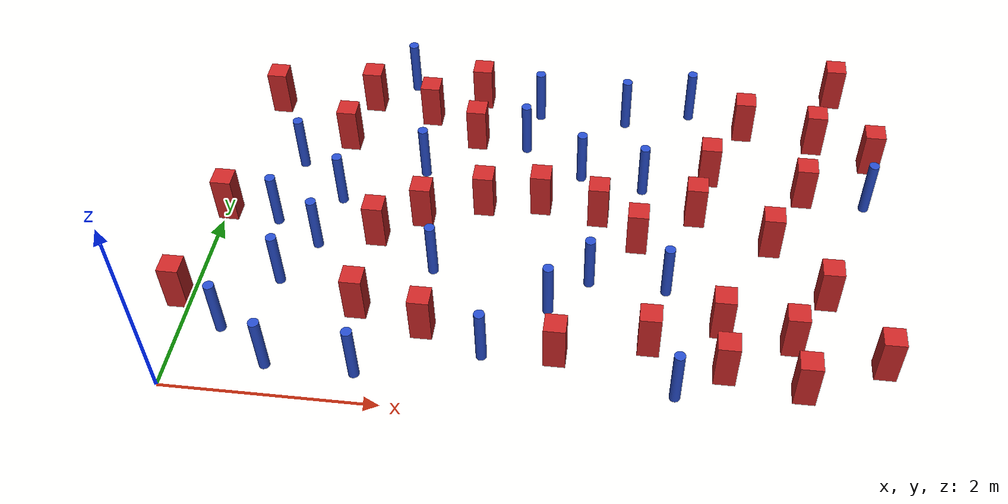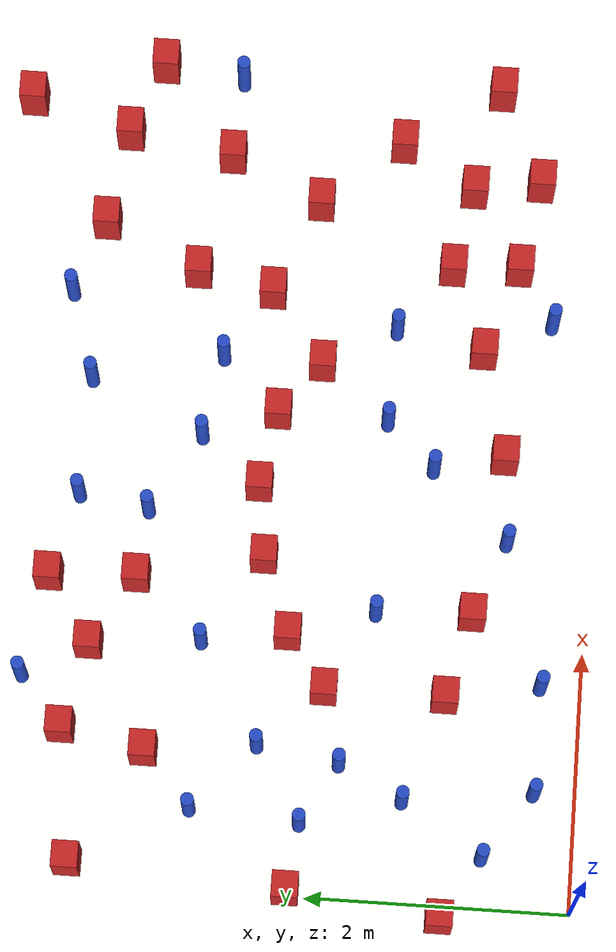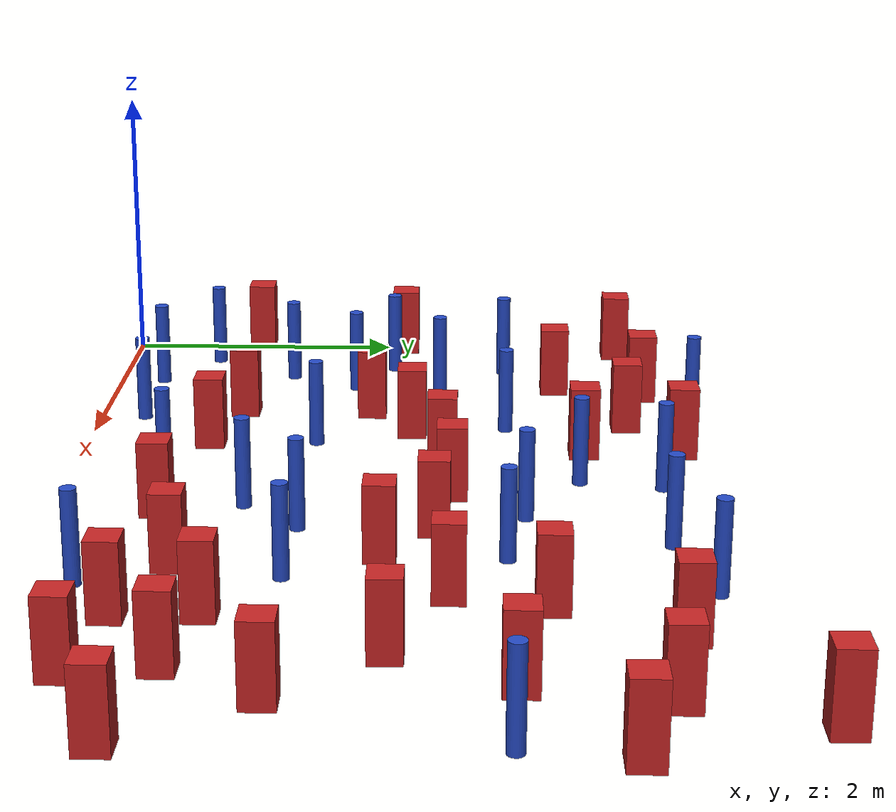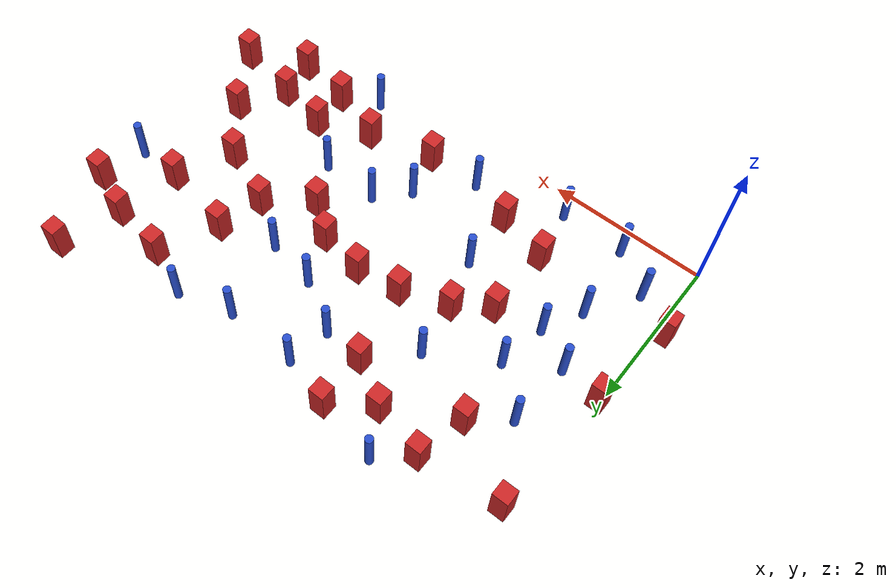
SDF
<sdf version="1.6">
 <model name="dense_20">
  <model name="pole_obstacle3">
   <static>true</static>
   <pose>1.12006407967 2.42599292531 2.88873142074e-08 -9.90536689791e-09 4.6021994899e-07 -1.20965994959e-07</pose>
   <link name="link">
    <pose>0 0 0.3 0 -0 0</pose>
    <inertial>
     <mass>1</mass>
     <inertia><ixx>0.145833</ixx><ixy>0</ixy><ixz>0</ixz><iyy>0.145833</iyy><iyz>0</iyz><izz>0.125</izz></inertia>
    </inertial>
    <collision name="collision">
     <geometry><cylinder><radius>0.05</radius><length>.6</length></cylinder></geometry>
    </collision>
    <visual name="visual">
     <geometry><cylinder><radius>0.05</radius><length>.6</length></cylinder></geometry>
     <material>
      <script><name>Gazebo/Blue</name><uri>file://media/materials/scripts/gazebo.material</uri></script>
     </material>
    </visual>
   </link>
  </model>
  <model name="square_post_obstacle14">
   <static>true</static>
   <pose>5.66487133897 0.518670508902 8.22691968438e-08 7.2212513382e-06 -7.54495500217e-07 2.29674213826e-05</pose>
   <link name="link">
    <pose>0 0 0.25 0 -0 0</pose>
    <inertial>
     <mass>100</mass>
     <inertia>
      <ixx>0.166667</ixx>
      <ixy>0</ixy>
      <ixz>0</ixz>
      <iyy>0.166667</iyy>
      <iyz>0</iyz>
      <izz>0.166667</izz>
     </inertia>
    </inertial>
    <collision name="collision"><geometry><box><size>.2 .2 .5</size></box></geometry></collision>
    <visual name="visual">
     <geometry><box><size>.2 .2 .5</size></box></geometry>
     <material>
      <script><name>Gazebo/Red</name><uri>file://media/materials/scripts/gazebo.material</uri></script>
     </material>
    </visual>
   </link>
  </model>
  <model name="pole_obstacle9">
   <static>true</static>
   <pose>4.54602831759 0.370276990639 2.88873142074e-08 -9.90536689981e-09 4.60219948986e-07 -1.20965994962e-07</pose>
   <link name="link">
    <pose>0 0 0.3 0 -0 0</pose>
    <inertial>
     <mass>1</mass>
     <inertia><ixx>0.145833</ixx><ixy>0</ixy><ixz>0</ixz><iyy>0.145833</iyy><iyz>0</iyz><izz>0.125</izz></inertia>
    </inertial>
    <collision name="collision">
     <geometry><cylinder><radius>0.05</radius><length>.6</length></cylinder></geometry>
    </collision>
    <visual name="visual">
     <geometry><cylinder><radius>0.05</radius><length>.6</length></cylinder></geometry>
     <material>
      <script><name>Gazebo/Blue</name><uri>file://media/materials/scripts/gazebo.material</uri></script>
     </material>
    </visual>
   </link>
  </model>
  <model name="square_post_obstacle31">
   <static>true</static>
   <pose>4.94219889889 1.16377534675 8.22691968438e-08 7.2212513382e-06 -7.54495500217e-07 2.29674213826e-05</pose>
   <link name="link">
    <pose>0 0 0.25 0 -0 0</pose>
    <inertial>
     <mass>100</mass>
     <inertia>
      <ixx>0.166667</ixx>
      <ixy>0</ixy>
      <ixz>0</ixz>
      <iyy>0.166667</iyy>
      <iyz>0</iyz>
      <izz>0.166667</izz>
     </inertia>
    </inertial>
    <collision name="collision"><geometry><box><size>.2 .2 .5</size></box></geometry></collision>
    <visual name="visual">
     <geometry><box><size>.2 .2 .5</size></box></geometry>
     <material>
      <script><name>Gazebo/Red</name><uri>file://media/materials/scripts/gazebo.material</uri></script>
     </material>
    </visual>
   </link>
  </model>
  <model name="pole_obstacle25">
   <static>true</static>
   <pose>4.42375611299 1.56296586128 2.88873142074e-08 -9.90536689445e-09 4.60219948999e-07 -1.20965994956e-07</pose>
   <link name="link">
    <pose>0 0 0.3 0 -0 0</pose>
    <inertial>
     <mass>1</mass>
     <inertia><ixx>0.145833</ixx><ixy>0</ixy><ixz>0</ixz><iyy>0.145833</iyy><iyz>0</iyz><izz>0.125</izz></inertia>
    </inertial>
    <collision name="collision">
     <geometry><cylinder><radius>0.05</radius><length>.6</length></cylinder></geometry>
    </collision>
    <visual name="visual">
     <geometry><cylinder><radius>0.05</radius><length>.6</length></cylinder></geometry>
     <material>
      <script><name>Gazebo/Blue</name><uri>file://media/materials/scripts/gazebo.material</uri></script>
     </material>
    </visual>
   </link>
  </model>
  <model name="square_post_obstacle32">
   <static>true</static>
   <pose>5.1428946223 3.85929947308 8.22691968438e-08 7.2212513382e-06 -7.54495500217e-07 2.29674213826e-05</pose>
   <link name="link">
    <pose>0 0 0.25 0 -0 0</pose>
    <inertial>
     <mass>100</mass>
     <inertia>
      <ixx>0.166667</ixx>
      <ixy>0</ixy>
      <ixz>0</ixz>
      <iyy>0.166667</iyy>
      <iyz>0</iyz>
      <izz>0.166667</izz>
     </inertia>
    </inertial>
    <collision name="collision"><geometry><box><size>.2 .2 .5</size></box></geometry></collision>
    <visual name="visual">
     <geometry><box><size>.2 .2 .5</size></box></geometry>
     <material>
      <script><name>Gazebo/Red</name><uri>file://media/materials/scripts/gazebo.material</uri></script>
     </material>
    </visual>
   </link>
  </model>
  <model name="pole_obstacle30">
   <static>true</static>
   <pose>0.374641003809 0.685154398655 2.88873142074e-08 -9.9053668986e-09 4.60219948989e-07 -1.20965994961e-07</pose>
   <link name="link">
    <pose>0 0 0.3 0 -0 0</pose>
    <inertial>
     <mass>1</mass>
     <inertia><ixx>0.145833</ixx><ixy>0</ixy><ixz>0</ixz><iyy>0.145833</iyy><iyz>0</iyz><izz>0.125</izz></inertia>
    </inertial>
    <collision name="collision">
     <geometry><cylinder><radius>0.05</radius><length>.6</length></cylinder></geometry>
    </collision>
    <visual name="visual">
     <geometry><cylinder><radius>0.05</radius><length>.6</length></cylinder></geometry>
     <material>
      <script><name>Gazebo/Blue</name><uri>file://media/materials/scripts/gazebo.material</uri></script>
     </material>
    </visual>
   </link>
  </model>
  <model name="pole_obstacle32">
   <static>true</static>
   <pose>4.57245997009 4.08333504648 2.88873142074e-08 -9.90536690842e-09 4.60219948965e-07 -1.20965994976e-07</pose>
   <link name="link">
    <pose>0 0 0.3 0 -0 0</pose>
    <inertial>
     <mass>1</mass>
     <inertia><ixx>0.145833</ixx><ixy>0</ixy><ixz>0</ixz><iyy>0.145833</iyy><iyz>0</iyz><izz>0.125</izz></inertia>
    </inertial>
    <collision name="collision">
     <geometry><cylinder><radius>0.05</radius><length>.6</length></cylinder></geometry>
    </collision>
    <visual name="visual">
     <geometry><cylinder><radius>0.05</radius><length>.6</length></cylinder></geometry>
     <material>
      <script><name>Gazebo/Blue</name><uri>file://media/materials/scripts/gazebo.material</uri></script>
     </material>
    </visual>
   </link>
  </model>
  <model name="square_post_obstacle37">
   <static>true</static>
   <pose>5.74137818954 2.92356763334 8.22691968438e-08 7.2212513382e-06 -7.54495500217e-07 2.29674213826e-05</pose>
   <link name="link">
    <pose>0 0 0.25 0 -0 0</pose>
    <inertial>
     <mass>100</mass>
     <inertia>
      <ixx>0.166667</ixx>
      <ixy>0</ixy>
      <ixz>0</ixz>
      <iyy>0.166667</iyy>
      <iyz>0</iyz>
      <izz>0.166667</izz>
     </inertia>
    </inertial>
    <collision name="collision"><geometry><box><size>.2 .2 .5</size></box></geometry></collision>
    <visual name="visual">
     <geometry><box><size>.2 .2 .5</size></box></geometry>
     <material>
      <script><name>Gazebo/Red</name><uri>file://media/materials/scripts/gazebo.material</uri></script>
     </material>
    </visual>
   </link>
  </model>
  <model name="square_post_obstacle51">
   <static>true</static>
   <pose>3.71321894691 2.43603956643 8.22691968438e-08 7.2212513382e-06 -7.54495500217e-07 2.29674213826e-05</pose>
   <link name="link">
    <pose>0 0 0.25 0 -0 0</pose>
    <inertial>
     <mass>100</mass>
     <inertia>
      <ixx>0.166667</ixx>
      <ixy>0</ixy>
      <ixz>0</ixz>
      <iyy>0.166667</iyy>
      <iyz>0</iyz>
      <izz>0.166667</izz>
     </inertia>
    </inertial>
    <collision name="collision"><geometry><box><size>.2 .2 .5</size></box></geometry></collision>
    <visual name="visual">
     <geometry><box><size>.2 .2 .5</size></box></geometry>
     <material>
      <script><name>Gazebo/Red</name><uri>file://media/materials/scripts/gazebo.material</uri></script>
     </material>
    </visual>
   </link>
  </model>
  <model name="square_post_obstacle52">
   <static>true</static>
   <pose>3.4635204265 0.680936921465 8.22691968438e-08 7.2212513382e-06 -7.54495500217e-07 2.29674213826e-05</pose>
   <link name="link">
    <pose>0 0 0.25 0 -0 0</pose>
    <inertial>
     <mass>100</mass>
     <inertia>
      <ixx>0.166667</ixx>
      <ixy>0</ixy>
      <ixz>0</ixz>
      <iyy>0.166667</iyy>
      <iyz>0</iyz>
      <izz>0.166667</izz>
     </inertia>
    </inertial>
    <collision name="collision"><geometry><box><size>.2 .2 .5</size></box></geometry></collision>
    <visual name="visual">
     <geometry><box><size>.2 .2 .5</size></box></geometry>
     <material>
      <script><name>Gazebo/Red</name><uri>file://media/materials/scripts/gazebo.material</uri></script>
     </material>
    </visual>
   </link>
  </model>
  <model name="square_post_obstacle54">
   <static>true</static>
   <pose>3.13257688299 2.54080047916 8.22691968438e-08 7.2212513382e-06 -7.54495500217e-07 2.29674213826e-05</pose>
   <link name="link">
    <pose>0 0 0.25 0 -0 0</pose>
    <inertial>
     <mass>100</mass>
     <inertia>
      <ixx>0.166667</ixx>
      <ixy>0</ixy>
      <ixz>0</ixz>
      <iyy>0.166667</iyy>
      <iyz>0</iyz>
      <izz>0.166667</izz>
     </inertia>
    </inertial>
    <collision name="collision"><geometry><box><size>.2 .2 .5</size></box></geometry></collision>
    <visual name="visual">
     <geometry><box><size>.2 .2 .5</size></box></geometry>
     <material>
      <script><name>Gazebo/Red</name><uri>file://media/materials/scripts/gazebo.material</uri></script>
     </material>
    </visual>
   </link>
  </model>
  <model name="square_post_obstacle60">
   <static>true</static>
   <pose>1.82237085994 3.7509318334 8.22691968438e-08 7.2212513382e-06 -7.54495500217e-07 2.29674213826e-05</pose>
   <link name="link">
    <pose>0 0 0.25 0 -0 0</pose>
    <inertial>
     <mass>100</mass>
     <inertia>
      <ixx>0.166667</ixx>
      <ixy>0</ixy>
      <ixz>0</ixz>
      <iyy>0.166667</iyy>
      <iyz>0</iyz>
      <izz>0.166667</izz>
     </inertia>
    </inertial>
    <collision name="collision"><geometry><box><size>.2 .2 .5</size></box></geometry></collision>
    <visual name="visual">
     <geometry><box><size>.2 .2 .5</size></box></geometry>
     <material>
      <script><name>Gazebo/Red</name><uri>file://media/materials/scripts/gazebo.material</uri></script>
     </material>
    </visual>
   </link>
  </model>
  <model name="pole_obstacle60">
   <static>true</static>
   <pose>1.70444172719 0.311133510818 2.88873142074e-08 -9.90536689733e-09 4.60219948992e-07 -1.20965994959e-07</pose>
   <link name="link">
    <pose>0 0 0.3 0 -0 0</pose>
    <inertial>
     <mass>1</mass>
     <inertia><ixx>0.145833</ixx><ixy>0</ixy><ixz>0</ixz><iyy>0.145833</iyy><iyz>0</iyz><izz>0.125</izz></inertia>
    </inertial>
    <collision name="collision">
     <geometry><cylinder><radius>0.05</radius><length>.6</length></cylinder></geometry>
    </collision>
    <visual name="visual">
     <geometry><cylinder><radius>0.05</radius><length>.6</length></cylinder></geometry>
     <material>
      <script><name>Gazebo/Blue</name><uri>file://media/materials/scripts/gazebo.material</uri></script>
     </material>
    </visual>
   </link>
  </model>
  <model name="pole_obstacle63">
   <static>true</static>
   <pose>1.89204631772 2.90207354669 2.88873142074e-08 -9.90536689791e-09 4.6021994899e-07 -1.20965994959e-07</pose>
   <link name="link">
    <pose>0 0 0.3 0 -0 0</pose>
    <inertial>
     <mass>1</mass>
     <inertia><ixx>0.145833</ixx><ixy>0</ixy><ixz>0</ixz><iyy>0.145833</iyy><iyz>0</iyz><izz>0.125</izz></inertia>
    </inertial>
    <collision name="collision">
     <geometry><cylinder><radius>0.05</radius><length>.6</length></cylinder></geometry>
    </collision>
    <visual name="visual">
     <geometry><cylinder><radius>0.05</radius><length>.6</length></cylinder></geometry>
     <material>
      <script><name>Gazebo/Blue</name><uri>file://media/materials/scripts/gazebo.material</uri></script>
     </material>
    </visual>
   </link>
  </model>
  <model name="square_post_obstacle66">
   <static>true</static>
   <pose>1.16284551338 3.91418669821 8.22691968438e-08 7.2212513382e-06 -7.54495500217e-07 2.29674213826e-05</pose>
   <link name="link">
    <pose>0 0 0.25 0 -0 0</pose>
    <inertial>
     <mass>100</mass>
     <inertia>
      <ixx>0.166667</ixx>
      <ixy>0</ixy>
      <ixz>0</ixz>
      <iyy>0.166667</iyy>
      <iyz>0</iyz>
      <izz>0.166667</izz>
     </inertia>
    </inertial>
    <collision name="collision"><geometry><box><size>.2 .2 .5</size></box></geometry></collision>
    <visual name="visual">
     <geometry><box><size>.2 .2 .5</size></box></geometry>
     <material>
      <script><name>Gazebo/Red</name><uri>file://media/materials/scripts/gazebo.material</uri></script>
     </material>
    </visual>
   </link>
  </model>
  <model name="square_post_obstacle74">
   <static>true</static>
   <pose>2.57115059037 2.46789326973 8.22691968438e-08 7.2212513382e-06 -7.54495500217e-07 2.29674213826e-05</pose>
   <link name="link">
    <pose>0 0 0.25 0 -0 0</pose>
    <inertial>
     <mass>100</mass>
     <inertia>
      <ixx>0.166667</ixx>
      <ixy>0</ixy>
      <ixz>0</ixz>
      <iyy>0.166667</iyy>
      <iyz>0</iyz>
      <izz>0.166667</izz>
     </inertia>
    </inertial>
    <collision name="collision"><geometry><box><size>.2 .2 .5</size></box></geometry></collision>
    <visual name="visual">
     <geometry><box><size>.2 .2 .5</size></box></geometry>
     <material>
      <script><name>Gazebo/Red</name><uri>file://media/materials/scripts/gazebo.material</uri></script>
     </material>
    </visual>
   </link>
  </model>
  <model name="pole_obstacle72">
   <static>true</static>
   <pose>2.80286792616 0.626630785535 2.88873142074e-08 -9.90536689285e-09 4.60219949002e-07 -1.20965994953e-07</pose>
   <link name="link">
    <pose>0 0 0.3 0 -0 0</pose>
    <inertial>
     <mass>1</mass>
     <inertia><ixx>0.145833</ixx><ixy>0</ixy><ixz>0</ixz><iyy>0.145833</iyy><iyz>0</iyz><izz>0.125</izz></inertia>
    </inertial>
    <collision name="collision">
     <geometry><cylinder><radius>0.05</radius><length>.6</length></cylinder></geometry>
    </collision>
    <visual name="visual">
     <geometry><cylinder><radius>0.05</radius><length>.6</length></cylinder></geometry>
     <material>
      <script><name>Gazebo/Blue</name><uri>file://media/materials/scripts/gazebo.material</uri></script>
     </material>
    </visual>
   </link>
  </model>
  <model name="pole_obstacle73">
   <static>true</static>
   <pose>3.34233274552 1.21751272224 2.88873142074e-08 -9.90536689395e-09 4.60219949e-07 -1.20965994953e-07</pose>
   <link name="link">
    <pose>0 0 0.3 0 -0 0</pose>
    <inertial>
     <mass>1</mass>
     <inertia><ixx>0.145833</ixx><ixy>0</ixy><ixz>0</ixz><iyy>0.145833</iyy><iyz>0</iyz><izz>0.125</izz></inertia>
    </inertial>
    <collision name="collision">
     <geometry><cylinder><radius>0.05</radius><length>.6</length></cylinder></geometry>
    </collision>
    <visual name="visual">
     <geometry><cylinder><radius>0.05</radius><length>.6</length></cylinder></geometry>
     <material>
      <script><name>Gazebo/Blue</name><uri>file://media/materials/scripts/gazebo.material</uri></script>
     </material>
    </visual>
   </link>
  </model>
  <model name="pole_obstacle86">
   <static>true</static>
   <pose>3.69305729281 1.59004671607 2.88873142074e-08 -9.90536689395e-09 4.60219949e-07 -1.20965994953e-07</pose>
   <link name="link">
    <pose>0 0 0.3 0 -0 0</pose>
    <inertial>
     <mass>1</mass>
     <inertia><ixx>0.145833</ixx><ixy>0</ixy><ixz>0</ixz><iyy>0.145833</iyy><iyz>0</iyz><izz>0.125</izz></inertia>
    </inertial>
    <collision name="collision">
     <geometry><cylinder><radius>0.05</radius><length>.6</length></cylinder></geometry>
    </collision>
    <visual name="visual">
     <geometry><cylinder><radius>0.05</radius><length>.6</length></cylinder></geometry>
     <material>
      <script><name>Gazebo/Blue</name><uri>file://media/materials/scripts/gazebo.material</uri></script>
     </material>
    </visual>
   </link>
  </model>
  <model name="pole_obstacle88">
   <static>true</static>
   <pose>2.19487959087 1.59058358991 2.88873142074e-08 -9.90536689395e-09 4.60219949e-07 -1.20965994953e-07</pose>
   <link name="link">
    <pose>0 0 0.3 0 -0 0</pose>
    <inertial>
     <mass>1</mass>
     <inertia><ixx>0.145833</ixx><ixy>0</ixy><ixz>0</ixz><iyy>0.145833</iyy><iyz>0</iyz><izz>0.125</izz></inertia>
    </inertial>
    <collision name="collision">
     <geometry><cylinder><radius>0.05</radius><length>.6</length></cylinder></geometry>
    </collision>
    <visual name="visual">
     <geometry><cylinder><radius>0.05</radius><length>.6</length></cylinder></geometry>
     <material>
      <script><name>Gazebo/Blue</name><uri>file://media/materials/scripts/gazebo.material</uri></script>
     </material>
    </visual>
   </link>
  </model>
  <model name="square_post_obstacle82">
   <static>true</static>
   <pose>5.4012256387 2.21309586892 8.22691968438e-08 7.2212513382e-06 -7.54495500217e-07 2.29674213826e-05</pose>
   <link name="link">
    <pose>0 0 0.25 0 -0 0</pose>
    <inertial>
     <mass>100</mass>
     <inertia>
      <ixx>0.166667</ixx>
      <ixy>0</ixy>
      <ixz>0</ixz>
      <iyy>0.166667</iyy>
      <iyz>0</iyz>
      <izz>0.166667</izz>
     </inertia>
    </inertial>
    <collision name="collision"><geometry><box><size>.2 .2 .5</size></box></geometry></collision>
    <visual name="visual">
     <geometry><box><size>.2 .2 .5</size></box></geometry>
     <material>
      <script><name>Gazebo/Red</name><uri>file://media/materials/scripts/gazebo.material</uri></script>
     </material>
    </visual>
   </link>
  </model>
  <model name="square_post_obstacle87">
   <static>true</static>
   <pose>6.11257025935 4.50438272773 8.22691968438e-08 7.2212513382e-06 -7.54495500217e-07 2.29674213826e-05</pose>
   <link name="link">
    <pose>0 0 0.25 0 -0 0</pose>
    <inertial>
     <mass>100</mass>
     <inertia>
      <ixx>0.166667</ixx>
      <ixy>0</ixy>
      <ixz>0</ixz>
      <iyy>0.166667</iyy>
      <iyz>0</iyz>
      <izz>0.166667</izz>
     </inertia>
    </inertial>
    <collision name="collision"><geometry><box><size>.2 .2 .5</size></box></geometry></collision>
    <visual name="visual">
     <geometry><box><size>.2 .2 .5</size></box></geometry>
     <material>
      <script><name>Gazebo/Red</name><uri>file://media/materials/scripts/gazebo.material</uri></script>
     </material>
    </visual>
   </link>
  </model>
  <model name="pole_obstacle106">
   <static>true</static>
   <pose>2.97546142834 3.91210693573 2.88873142074e-08 -9.90536690232e-09 4.6021994898e-07 -1.20965994968e-07</pose>
   <link name="link">
    <pose>0 0 0.3 0 -0 0</pose>
    <inertial>
     <mass>1</mass>
     <inertia><ixx>0.145833</ixx><ixy>0</ixy><ixz>0</ixz><iyy>0.145833</iyy><iyz>0</iyz><izz>0.125</izz></inertia>
    </inertial>
    <collision name="collision">
     <geometry><cylinder><radius>0.05</radius><length>.6</length></cylinder></geometry>
    </collision>
    <visual name="visual">
     <geometry><cylinder><radius>0.05</radius><length>.6</length></cylinder></geometry>
     <material>
      <script><name>Gazebo/Blue</name><uri>file://media/materials/scripts/gazebo.material</uri></script>
     </material>
    </visual>
   </link>
  </model>
  <model name="square_post_obstacle97">
   <static>true</static>
   <pose>4.6678711514 2.53903928232 8.22691968438e-08 7.2212513382e-06 -7.54495500217e-07 2.29674213826e-05</pose>
   <link name="link">
    <pose>0 0 0.25 0 -0 0</pose>
    <inertial>
     <mass>100</mass>
     <inertia>
      <ixx>0.166667</ixx>
      <ixy>0</ixy>
      <ixz>0</ixz>
      <iyy>0.166667</iyy>
      <iyz>0</iyz>
      <izz>0.166667</izz>
     </inertia>
    </inertial>
    <collision name="collision"><geometry><box><size>.2 .2 .5</size></box></geometry></collision>
    <visual name="visual">
     <geometry><box><size>.2 .2 .5</size></box></geometry>
     <material>
      <script><name>Gazebo/Red</name><uri>file://media/materials/scripts/gazebo.material</uri></script>
     </material>
    </visual>
   </link>
  </model>
  <model name="pole_obstacle110">
   <static>true</static>
   <pose>2.88596875471 3.37521365826 2.88873142074e-08 -9.90536690232e-09 4.6021994898e-07 -1.20965994968e-07</pose>
   <link name="link">
    <pose>0 0 0.3 0 -0 0</pose>
    <inertial>
     <mass>1</mass>
     <inertia><ixx>0.145833</ixx><ixy>0</ixy><ixz>0</ixz><iyy>0.145833</iyy><iyz>0</iyz><izz>0.125</izz></inertia>
    </inertial>
    <collision name="collision">
     <geometry><cylinder><radius>0.05</radius><length>.6</length></cylinder></geometry>
    </collision>
    <visual name="visual">
     <geometry><cylinder><radius>0.05</radius><length>.6</length></cylinder></geometry>
     <material>
      <script><name>Gazebo/Blue</name><uri>file://media/materials/scripts/gazebo.material</uri></script>
     </material>
    </visual>
   </link>
  </model>
  <model name="square_post_obstacle108">
   <static>true</static>
   <pose>6.44473476472 3.494466569 8.22691968438e-08 7.2212513382e-06 -7.54495500217e-07 2.29674213826e-05</pose>
   <link name="link">
    <pose>0 0 0.25 0 -0 0</pose>
    <inertial>
     <mass>100</mass>
     <inertia>
      <ixx>0.166667</ixx>
      <ixy>0</ixy>
      <ixz>0</ixz>
      <iyy>0.166667</iyy>
      <iyz>0</iyz>
      <izz>0.166667</izz>
     </inertia>
    </inertial>
    <collision name="collision"><geometry><box><size>.2 .2 .5</size></box></geometry></collision>
    <visual name="visual">
     <geometry><box><size>.2 .2 .5</size></box></geometry>
     <material>
      <script><name>Gazebo/Red</name><uri>file://media/materials/scripts/gazebo.material</uri></script>
     </material>
    </visual>
   </link>
  </model>
  <model name="pole_obstacle120">
   <static>true</static>
   <pose>3.89422844097 3.88358116214 2.88873142074e-08 -9.90536690232e-09 4.6021994898e-07 -1.20965994968e-07</pose>
   <link name="link">
    <pose>0 0 0.3 0 -0 0</pose>
    <inertial>
     <mass>1</mass>
     <inertia><ixx>0.145833</ixx><ixy>0</ixy><ixz>0</ixz><iyy>0.145833</iyy><iyz>0</iyz><izz>0.125</izz></inertia>
    </inertial>
    <collision name="collision">
     <geometry><cylinder><radius>0.05</radius><length>.6</length></cylinder></geometry>
    </collision>
    <visual name="visual">
     <geometry><cylinder><radius>0.05</radius><length>.6</length></cylinder></geometry>
     <material>
      <script><name>Gazebo/Blue</name><uri>file://media/materials/scripts/gazebo.material</uri></script>
     </material>
    </visual>
   </link>
  </model>
  <model name="pole_obstacle128">
   <static>true</static>
   <pose>0.546458283947 2.06798419328 2.88873142074e-08 -9.90536689505e-09 4.60219948997e-07 -1.20965994956e-07</pose>
   <link name="link">
    <pose>0 0 0.3 0 -0 0</pose>
    <inertial>
     <mass>1</mass>
     <inertia><ixx>0.145833</ixx><ixy>0</ixy><ixz>0</ixz><iyy>0.145833</iyy><iyz>0</iyz><izz>0.125</izz></inertia>
    </inertial>
    <collision name="collision">
     <geometry><cylinder><radius>0.05</radius><length>.6</length></cylinder></geometry>
    </collision>
    <visual name="visual">
     <geometry><cylinder><radius>0.05</radius><length>.6</length></cylinder></geometry>
     <material>
      <script><name>Gazebo/Blue</name><uri>file://media/materials/scripts/gazebo.material</uri></script>
     </material>
    </visual>
   </link>
  </model>
  <model name="square_post_obstacle115">
   <static>true</static>
   <pose>5.58071994504 1.03320469162 8.22691968438e-08 7.2212513382e-06 -7.54495500217e-07 2.29674213826e-05</pose>
   <link name="link">
    <pose>0 0 0.25 0 -0 0</pose>
    <inertial>
     <mass>100</mass>
     <inertia>
      <ixx>0.166667</ixx>
      <ixy>0</ixy>
      <ixz>0</ixz>
      <iyy>0.166667</iyy>
      <iyz>0</iyz>
      <izz>0.166667</izz>
     </inertia>
    </inertial>
    <collision name="collision"><geometry><box><size>.2 .2 .5</size></box></geometry></collision>
    <visual name="visual">
     <geometry><box><size>.2 .2 .5</size></box></geometry>
     <material>
      <script><name>Gazebo/Red</name><uri>file://media/materials/scripts/gazebo.material</uri></script>
     </material>
    </visual>
   </link>
  </model>
  <model name="square_post_obstacle116">
   <static>true</static>
   <pose>1.02640708633 3.27632808334 8.22691968438e-08 7.2212513382e-06 -7.54495500217e-07 2.29674213826e-05</pose>
   <link name="link">
    <pose>0 0 0.25 0 -0 0</pose>
    <inertial>
     <mass>100</mass>
     <inertia>
      <ixx>0.166667</ixx>
      <ixy>0</ixy>
      <ixz>0</ixz>
      <iyy>0.166667</iyy>
      <iyz>0</iyz>
      <izz>0.166667</izz>
     </inertia>
    </inertial>
    <collision name="collision"><geometry><box><size>.2 .2 .5</size></box></geometry></collision>
    <visual name="visual">
     <geometry><box><size>.2 .2 .5</size></box></geometry>
     <material>
      <script><name>Gazebo/Red</name><uri>file://media/materials/scripts/gazebo.material</uri></script>
     </material>
    </visual>
   </link>
  </model>
  <model name="pole_obstacle141">
   <static>true</static>
   <pose>4.13117142508 2.88281039151 2.88873142074e-08 -9.90536690245e-09 4.6021994898e-07 -1.20965994966e-07</pose>
   <link name="link">
    <pose>0 0 0.3 0 -0 0</pose>
    <inertial>
     <mass>1</mass>
     <inertia><ixx>0.145833</ixx><ixy>0</ixy><ixz>0</ixz><iyy>0.145833</iyy><iyz>0</iyz><izz>0.125</izz></inertia>
    </inertial>
    <collision name="collision">
     <geometry><cylinder><radius>0.05</radius><length>.6</length></cylinder></geometry>
    </collision>
    <visual name="visual">
     <geometry><cylinder><radius>0.05</radius><length>.6</length></cylinder></geometry>
     <material>
      <script><name>Gazebo/Blue</name><uri>file://media/materials/scripts/gazebo.material</uri></script>
     </material>
    </visual>
   </link>
  </model>
  <model name="square_post_obstacle131">
   <static>true</static>
   <pose>1.9884855205 2.24777952639 8.22691968438e-08 7.2212513382e-06 -7.54495500217e-07 2.29674213826e-05</pose>
   <link name="link">
    <pose>0 0 0.25 0 -0 0</pose>
    <inertial>
     <mass>100</mass>
     <inertia>
      <ixx>0.166667</ixx>
      <ixy>0</ixy>
      <ixz>0</ixz>
      <iyy>0.166667</iyy>
      <iyz>0</iyz>
      <izz>0.166667</izz>
     </inertia>
    </inertial>
    <collision name="collision"><geometry><box><size>.2 .2 .5</size></box></geometry></collision>
    <visual name="visual">
     <geometry><box><size>.2 .2 .5</size></box></geometry>
     <material>
      <script><name>Gazebo/Red</name><uri>file://media/materials/scripts/gazebo.material</uri></script>
     </material>
    </visual>
   </link>
  </model>
  <model name="pole_obstacle149">
   <static>true</static>
   <pose>6.36225177841 2.88321310868 2.88873142074e-08 -9.90536690245e-09 4.6021994898e-07 -1.20965994966e-07</pose>
   <link name="link">
    <pose>0 0 0.3 0 -0 0</pose>
    <inertial>
     <mass>1</mass>
     <inertia><ixx>0.145833</ixx><ixy>0</ixy><ixz>0</ixz><iyy>0.145833</iyy><iyz>0</iyz><izz>0.125</izz></inertia>
    </inertial>
    <collision name="collision">
     <geometry><cylinder><radius>0.05</radius><length>.6</length></cylinder></geometry>
    </collision>
    <visual name="visual">
     <geometry><cylinder><radius>0.05</radius><length>.6</length></cylinder></geometry>
     <material>
      <script><name>Gazebo/Blue</name><uri>file://media/materials/scripts/gazebo.material</uri></script>
     </material>
    </visual>
   </link>
  </model>
  <model name="square_post_obstacle155">
   <static>true</static>
   <pose>2.33254482875 4.09415571903 8.22691968438e-08 7.22125133819e-06 -7.54495500217e-07 2.29674213826e-05</pose>
   <link name="link">
    <pose>0 0 0.25 0 -0 0</pose>
    <inertial>
     <mass>100</mass>
     <inertia>
      <ixx>0.166667</ixx>
      <ixy>0</ixy>
      <ixz>0</ixz>
      <iyy>0.166667</iyy>
      <iyz>0</iyz>
      <izz>0.166667</izz>
     </inertia>
    </inertial>
    <collision name="collision"><geometry><box><size>.2 .2 .5</size></box></geometry></collision>
    <visual name="visual">
     <geometry><box><size>.2 .2 .5</size></box></geometry>
     <material>
      <script><name>Gazebo/Red</name><uri>file://media/materials/scripts/gazebo.material</uri></script>
     </material>
    </visual>
   </link>
  </model>
  <model name="pole_obstacle170">
   <static>true</static>
   <pose>0.766422172282 1.30743694981 2.88873142074e-08 -9.90536689855e-09 4.60219948989e-07 -1.20965994962e-07</pose>
   <link name="link">
    <pose>0 0 0.3 0 -0 0</pose>
    <inertial>
     <mass>1</mass>
     <inertia><ixx>0.145833</ixx><ixy>0</ixy><ixz>0</ixz><iyy>0.145833</iyy><iyz>0</iyz><izz>0.125</izz></inertia>
    </inertial>
    <collision name="collision">
     <geometry><cylinder><radius>0.05</radius><length>.6</length></cylinder></geometry>
    </collision>
    <visual name="visual">
     <geometry><cylinder><radius>0.05</radius><length>.6</length></cylinder></geometry>
     <material>
      <script><name>Gazebo/Blue</name><uri>file://media/materials/scripts/gazebo.material</uri></script>
     </material>
    </visual>
   </link>
  </model>
  <model name="square_post_obstacle161">
   <static>true</static>
   <pose>0.0383099126469 2.1383156638 8.22691968438e-08 7.2212513382e-06 -7.54495500217e-07 2.29674213826e-05</pose>
   <link name="link">
    <pose>0 0 0.25 0 -0 0</pose>
    <inertial>
     <mass>100</mass>
     <inertia>
      <ixx>0.166667</ixx>
      <ixy>0</ixy>
      <ixz>0</ixz>
      <iyy>0.166667</iyy>
      <iyz>0</iyz>
      <izz>0.166667</izz>
     </inertia>
    </inertial>
    <collision name="collision"><geometry><box><size>.2 .2 .5</size></box></geometry></collision>
    <visual name="visual">
     <geometry><box><size>.2 .2 .5</size></box></geometry>
     <material>
      <script><name>Gazebo/Red</name><uri>file://media/materials/scripts/gazebo.material</uri></script>
     </material>
    </visual>
   </link>
  </model>
  <model name="pole_obstacle175">
   <static>true</static>
   <pose>3.49614564618 3.00527513936 2.88873142074e-08 -9.90536690232e-09 4.6021994898e-07 -1.20965994968e-07</pose>
   <link name="link">
    <pose>0 0 0.3 0 -0 0</pose>
    <inertial>
     <mass>1</mass>
     <inertia><ixx>0.145833</ixx><ixy>0</ixy><ixz>0</ixz><iyy>0.145833</iyy><iyz>0</iyz><izz>0.125</izz></inertia>
    </inertial>
    <collision name="collision">
     <geometry><cylinder><radius>0.05</radius><length>.6</length></cylinder></geometry>
    </collision>
    <visual name="visual">
     <geometry><cylinder><radius>0.05</radius><length>.6</length></cylinder></geometry>
     <material>
      <script><name>Gazebo/Blue</name><uri>file://media/materials/scripts/gazebo.material</uri></script>
     </material>
    </visual>
   </link>
  </model>
  <model name="square_post_obstacle169">
   <static>true</static>
   <pose>5.91389027983 1.5980434141 8.22691968438e-08 7.2212513382e-06 -7.54495500217e-07 2.29674213826e-05</pose>
   <link name="link">
    <pose>0 0 0.25 0 -0 0</pose>
    <inertial>
     <mass>100</mass>
     <inertia>
      <ixx>0.166667</ixx>
      <ixy>0</ixy>
      <ixz>0</ixz>
      <iyy>0.166667</iyy>
      <iyz>0</iyz>
      <izz>0.166667</izz>
     </inertia>
    </inertial>
    <collision name="collision"><geometry><box><size>.2 .2 .5</size></box></geometry></collision>
    <visual name="visual">
     <geometry><box><size>.2 .2 .5</size></box></geometry>
     <material>
      <script><name>Gazebo/Red</name><uri>file://media/materials/scripts/gazebo.material</uri></script>
     </material>
    </visual>
   </link>
  </model>
  <model name="pole_obstacle185">
   <static>true</static>
   <pose>0.6059174356 2.90358751027 2.88873142074e-08 -9.90536689636e-09 4.60219948994e-07 -1.20965994958e-07</pose>
   <link name="link">
    <pose>0 0 0.3 0 -0 0</pose>
    <inertial>
     <mass>1</mass>
     <inertia><ixx>0.145833</ixx><ixy>0</ixy><ixz>0</ixz><iyy>0.145833</iyy><iyz>0</iyz><izz>0.125</izz></inertia>
    </inertial>
    <collision name="collision">
     <geometry><cylinder><radius>0.05</radius><length>.6</length></cylinder></geometry>
    </collision>
    <visual name="visual">
     <geometry><cylinder><radius>0.05</radius><length>.6</length></cylinder></geometry>
     <material>
      <script><name>Gazebo/Blue</name><uri>file://media/materials/scripts/gazebo.material</uri></script>
     </material>
    </visual>
   </link>
  </model>
  <model name="square_post_obstacle173">
   <static>true</static>
   <pose>4.97301242358 0.649123205907 8.22691968438e-08 7.2212513382e-06 -7.54495500217e-07 2.29674213826e-05</pose>
   <link name="link">
    <pose>0 0 0.25 0 -0 0</pose>
    <inertial>
     <mass>100</mass>
     <inertia>
      <ixx>0.166667</ixx>
      <ixy>0</ixy>
      <ixz>0</ixz>
      <iyy>0.166667</iyy>
      <iyz>0</iyz>
      <izz>0.166667</izz>
     </inertia>
    </inertial>
    <collision name="collision"><geometry><box><size>.2 .2 .5</size></box></geometry></collision>
    <visual name="visual">
     <geometry><box><size>.2 .2 .5</size></box></geometry>
     <material>
      <script><name>Gazebo/Red</name><uri>file://media/materials/scripts/gazebo.material</uri></script>
     </material>
    </visual>
   </link>
  </model>
  <model name="square_post_obstacle174">
   <static>true</static>
   <pose>6.38917351504 0.855998190962 8.22691968438e-08 7.2212513382e-06 -7.54495500217e-07 2.29674213826e-05</pose>
   <link name="link">
    <pose>0 0 0.25 0 -0 0</pose>
    <inertial>
     <mass>100</mass>
     <inertia>
      <ixx>0.166667</ixx>
      <ixy>0</ixy>
      <ixz>0</ixz>
      <iyy>0.166667</iyy>
      <iyz>0</iyz>
      <izz>0.166667</izz>
     </inertia>
    </inertial>
    <collision name="collision"><geometry><box><size>.2 .2 .5</size></box></geometry></collision>
    <visual name="visual">
     <geometry><box><size>.2 .2 .5</size></box></geometry>
     <material>
      <script><name>Gazebo/Red</name><uri>file://media/materials/scripts/gazebo.material</uri></script>
     </material>
    </visual>
   </link>
  </model>
  <model name="square_post_obstacle184">
   <static>true</static>
   <pose>0.153629990844 3.78752730661 8.22691968438e-08 7.2212513382e-06 -7.54495500217e-07 2.29674213826e-05</pose>
   <link name="link">
    <pose>0 0 0.25 0 -0 0</pose>
    <inertial>
     <mass>100</mass>
     <inertia>
      <ixx>0.166667</ixx>
      <ixy>0</ixy>
      <ixz>0</ixz>
      <iyy>0.166667</iyy>
      <iyz>0</iyz>
      <izz>0.166667</izz>
     </inertia>
    </inertial>
    <collision name="collision"><geometry><box><size>.2 .2 .5</size></box></geometry></collision>
    <visual name="visual">
     <geometry><box><size>.2 .2 .5</size></box></geometry>
     <material>
      <script><name>Gazebo/Red</name><uri>file://media/materials/scripts/gazebo.material</uri></script>
     </material>
    </visual>
   </link>
  </model>
  <model name="square_post_obstacle186">
   <static>true</static>
   <pose>4.79651025795 3.12495239108 8.22691968438e-08 7.2212513382e-06 -7.54495500217e-07 2.29674213826e-05</pose>
   <link name="link">
    <pose>0 0 0.25 0 -0 0</pose>
    <inertial>
     <mass>100</mass>
     <inertia>
      <ixx>0.166667</ixx>
      <ixy>0</ixy>
      <ixz>0</ixz>
      <iyy>0.166667</iyy>
      <iyz>0</iyz>
      <izz>0.166667</izz>
     </inertia>
    </inertial>
    <collision name="collision"><geometry><box><size>.2 .2 .5</size></box></geometry></collision>
    <visual name="visual">
     <geometry><box><size>.2 .2 .5</size></box></geometry>
     <material>
      <script><name>Gazebo/Red</name><uri>file://media/materials/scripts/gazebo.material</uri></script>
     </material>
    </visual>
   </link>
  </model>
  <model name="square_post_obstacle187">
   <static>true</static>
   <pose>4.28968624145 0.888665757653 8.22691968438e-08 7.2212513382e-06 -7.54495500217e-07 2.29674213826e-05</pose>
   <link name="link">
    <pose>0 0 0.25 0 -0 0</pose>
    <inertial>
     <mass>100</mass>
     <inertia>
      <ixx>0.166667</ixx>
      <ixy>0</ixy>
      <ixz>0</ixz>
      <iyy>0.166667</iyy>
      <iyz>0</iyz>
      <izz>0.166667</izz>
     </inertia>
    </inertial>
    <collision name="collision"><geometry><box><size>.2 .2 .5</size></box></geometry></collision>
    <visual name="visual">
     <geometry><box><size>.2 .2 .5</size></box></geometry>
     <material>
      <script><name>Gazebo/Red</name><uri>file://media/materials/scripts/gazebo.material</uri></script>
     </material>
    </visual>
   </link>
  </model>
  <model name="square_post_obstacle192">
   <static>true</static>
   <pose>2.22594024728 0.860601456393 8.22691968438e-08 7.2212513382e-06 -7.54495500217e-07 2.29674213826e-05</pose>
   <link name="link">
    <pose>0 0 0.25 0 -0 0</pose>
    <inertial>
     <mass>100</mass>
     <inertia>
      <ixx>0.166667</ixx>
      <ixy>0</ixy>
      <ixz>0</ixz>
      <iyy>0.166667</iyy>
      <iyz>0</iyz>
      <izz>0.166667</izz>
     </inertia>
    </inertial>
    <collision name="collision"><geometry><box><size>.2 .2 .5</size></box></geometry></collision>
    <visual name="visual">
     <geometry><box><size>.2 .2 .5</size></box></geometry>
     <material>
      <script><name>Gazebo/Red</name><uri>file://media/materials/scripts/gazebo.material</uri></script>
     </material>
    </visual>
   </link>
  </model>
  <model name="square_post_obstacle193">
   <static>true</static>
   <pose>1.58000864076 1.94710840458 8.22691968438e-08 7.2212513382e-06 -7.54495500217e-07 2.29674213826e-05</pose>
   <link name="link">
    <pose>0 0 0.25 0 -0 0</pose>
    <inertial>
     <mass>100</mass>
     <inertia>
      <ixx>0.166667</ixx>
      <ixy>0</ixy>
      <ixz>0</ixz>
      <iyy>0.166667</iyy>
      <iyz>0</iyz>
      <izz>0.166667</izz>
     </inertia>
    </inertial>
    <collision name="collision"><geometry><box><size>.2 .2 .5</size></box></geometry></collision>
    <visual name="visual">
     <geometry><box><size>.2 .2 .5</size></box></geometry>
     <material>
      <script><name>Gazebo/Red</name><uri>file://media/materials/scripts/gazebo.material</uri></script>
     </material>
    </visual>
   </link>
  </model>
  <model name="square_post_obstacle208">
   <static>true</static>
   <pose>5.87698298615 3.73117212576 8.22691968438e-08 7.2212513382e-06 -7.54495500217e-07 2.29674213826e-05</pose>
   <link name="link">
    <pose>0 0 0.25 0 -0 0</pose>
    <inertial>
     <mass>100</mass>
     <inertia>
      <ixx>0.166667</ixx>
      <ixy>0</ixy>
      <ixz>0</ixz>
      <iyy>0.166667</iyy>
      <iyz>0</iyz>
      <izz>0.166667</izz>
     </inertia>
    </inertial>
    <collision name="collision"><geometry><box><size>.2 .2 .5</size></box></geometry></collision>
    <visual name="visual">
     <geometry><box><size>.2 .2 .5</size></box></geometry>
     <material>
      <script><name>Gazebo/Red</name><uri>file://media/materials/scripts/gazebo.material</uri></script>
     </material>
    </visual>
   </link>
  </model>
  <model name="pole_obstacle197">
   <static>true</static>
   <pose>1.01577532239 1.798908816 2.88873142074e-08 -9.90536689555e-09 4.60219948996e-07 -1.20965994954e-07</pose>
   <link name="link">
    <pose>0 0 0.3 0 -0 0</pose>
    <inertial>
     <mass>1</mass>
     <inertia><ixx>0.145833</ixx><ixy>0</ixy><ixz>0</ixz><iyy>0.145833</iyy><iyz>0</iyz><izz>0.125</izz></inertia>
    </inertial>
    <collision name="collision">
     <geometry><cylinder><radius>0.05</radius><length>.6</length></cylinder></geometry>
    </collision>
    <visual name="visual">
     <geometry><cylinder><radius>0.05</radius><length>.6</length></cylinder></geometry>
     <material>
      <script><name>Gazebo/Blue</name><uri>file://media/materials/scripts/gazebo.material</uri></script>
     </material>
    </visual>
   </link>
  </model>
  <model name="pole_obstacle202">
   <static>true</static>
   <pose>1.54941722166 4.24670965578 2.88873142074e-08 -9.90536689852e-09 4.60219948989e-07 -1.2096599496e-07</pose>
   <link name="link">
    <pose>0 0 0.3 0 -0 0</pose>
    <inertial>
     <mass>1</mass>
     <inertia><ixx>0.145833</ixx><ixy>0</ixy><ixz>0</ixz><iyy>0.145833</iyy><iyz>0</iyz><izz>0.125</izz></inertia>
    </inertial>
    <collision name="collision">
     <geometry><cylinder><radius>0.05</radius><length>.6</length></cylinder></geometry>
    </collision>
    <visual name="visual">
     <geometry><cylinder><radius>0.05</radius><length>.6</length></cylinder></geometry>
     <material>
      <script><name>Gazebo/Blue</name><uri>file://media/materials/scripts/gazebo.material</uri></script>
     </material>
    </visual>
   </link>
  </model>
  <model name="pole_obstacle203">
   <static>true</static>
   <pose>0.887436293539 0.319349088272 2.88873142074e-08 -9.90536689558e-09 4.60219948996e-07 -1.20965994957e-07</pose>
   <link name="link">
    <pose>0 0 0.3 0 -0 0</pose>
    <inertial>
     <mass>1</mass>
     <inertia><ixx>0.145833</ixx><ixy>0</ixy><ixz>0</ixz><iyy>0.145833</iyy><iyz>0</iyz><izz>0.125</izz></inertia>
    </inertial>
    <collision name="collision">
     <geometry><cylinder><radius>0.05</radius><length>.6</length></cylinder></geometry>
    </collision>
    <visual name="visual">
     <geometry><cylinder><radius>0.05</radius><length>.6</length></cylinder></geometry>
     <material>
      <script><name>Gazebo/Blue</name><uri>file://media/materials/scripts/gazebo.material</uri></script>
     </material>
    </visual>
   </link>
  </model>
  <model name="square_post_obstacle211">
   <static>true</static>
   <pose>-0.0994111992681 0.978723278525 8.22691968438e-08 7.2212513382e-06 -7.54495500217e-07 2.29674213826e-05</pose>
   <link name="link">
    <pose>0 0 0.25 0 -0 0</pose>
    <inertial>
     <mass>100</mass>
     <inertia>
      <ixx>0.166667</ixx>
      <ixy>0</ixy>
      <ixz>0</ixz>
      <iyy>0.166667</iyy>
      <iyz>0</iyz>
      <izz>0.166667</izz>
     </inertia>
    </inertial>
    <collision name="collision"><geometry><box><size>.2 .2 .5</size></box></geometry></collision>
    <visual name="visual">
     <geometry><box><size>.2 .2 .5</size></box></geometry>
     <material>
      <script><name>Gazebo/Red</name><uri>file://media/materials/scripts/gazebo.material</uri></script>
     </material>
    </visual>
   </link>
  </model>
  <model name="square_post_obstacle217">
   <static>true</static>
   <pose>1.57698003262 1.03096996466 8.22691968438e-08 7.2212513382e-06 -7.54495500217e-07 2.29674213826e-05</pose>
   <link name="link">
    <pose>0 0 0.25 0 -0 0</pose>
    <inertial>
     <mass>100</mass>
     <inertia>
      <ixx>0.166667</ixx>
      <ixy>0</ixy>
      <ixz>0</ixz>
      <iyy>0.166667</iyy>
      <iyz>0</iyz>
      <izz>0.166667</izz>
     </inertia>
    </inertial>
    <collision name="collision"><geometry><box><size>.2 .2 .5</size></box></geometry></collision>
    <visual name="visual">
     <geometry><box><size>.2 .2 .5</size></box></geometry>
     <material>
      <script><name>Gazebo/Red</name><uri>file://media/materials/scripts/gazebo.material</uri></script>
     </material>
    </visual>
   </link>
  </model>
  <model name="square_post_obstacle219">
   <static>true</static>
   <pose>2.36162003262 3.42722996466 8.22691968438e-08 7.2212513382e-06 -7.54495500217e-07 2.29674213826e-05</pose>
   <link name="link">
    <pose>0 0 0.25 0 -0 0</pose>
    <inertial>
     <mass>100</mass>
     <inertia>
      <ixx>0.166667</ixx>
      <ixy>0</ixy>
      <ixz>0</ixz>
      <iyy>0.166667</iyy>
      <iyz>0</iyz>
      <izz>0.166667</izz>
     </inertia>
    </inertial>
    <collision name="collision"><geometry><box><size>.2 .2 .5</size></box></geometry></collision>
    <visual name="visual">
     <geometry><box><size>.2 .2 .5</size></box></geometry>
     <material>
      <script><name>Gazebo/Red</name><uri>file://media/materials/scripts/gazebo.material</uri></script>
     </material>
    </visual>
   </link>
  </model>
  <model name="square_post_obstacle225">
   <static>true</static>
   <pose>4.11452003262 2.12079996466 8.22691968438e-08 7.2212513382e-06 -7.54495500217e-07 2.29674213826e-05</pose>
   <link name="link">
    <pose>0 0 0.25 0 -0 0</pose>
    <inertial>
     <mass>100</mass>
     <inertia>
      <ixx>0.166667</ixx>
      <ixy>0</ixy>
      <ixz>0</ixz>
      <iyy>0.166667</iyy>
      <iyz>0</iyz>
      <izz>0.166667</izz>
     </inertia>
    </inertial>
    <collision name="collision"><geometry><box><size>.2 .2 .5</size></box></geometry></collision>
    <visual name="visual">
     <geometry><box><size>.2 .2 .5</size></box></geometry>
     <material>
      <script><name>Gazebo/Red</name><uri>file://media/materials/scripts/gazebo.material</uri></script>
     </material>
    </visual>
   </link>
  </model>
 </model>
</sdf>
